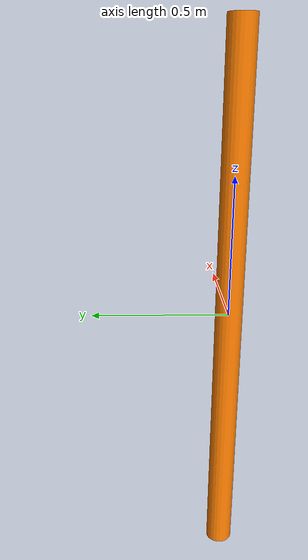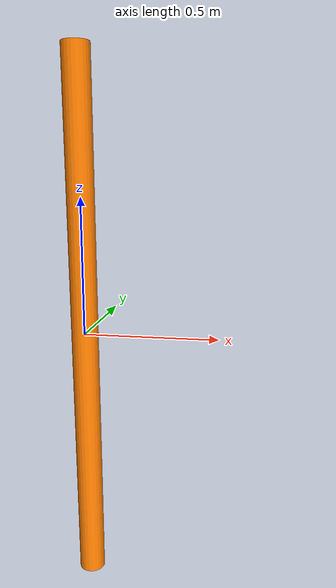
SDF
<?xml version="1.0" ?>
<sdf version="1.6">
  <model name="barrage_buoy">
    <plugin
        filename="gz-waves1-hydrodynamics-system"
        name="gz::sim::systems::Hydrodynamics">
    </plugin>
    <link name="base_link">
      <visual name="visual">
        <geometry>
          <cylinder>
            <radius>0.05</radius>
            <length>2.0</length>
          </cylinder>
        </geometry>
        <material>
          <ambient>1.0 0.5 0.0 1.0</ambient>
          <diffuse>1.0 0.5 0.0 1.0</diffuse>
          <specular>0.8 0.8 0.8 1.0</specular>
        </material>
      </visual>
      <collision name="collision">
        <geometry>
          <cylinder>
            <radius>0.3</radius>
            <length>2.0</length>
          </cylinder>
        </geometry>
      </collision>
      <inertial>
        <mass>312.5</mass>
        <inertia>
          <ixx>32.5</ixx>
          <ixy>0.0</ixy>
          <ixz>0.0</ixz>
          <iyy>169.3</iyy>
          <iyz>0.0</iyz>
          <izz>188.8</izz>
        </inertia>
      </inertial>
    </link>
  </model>
</sdf>
